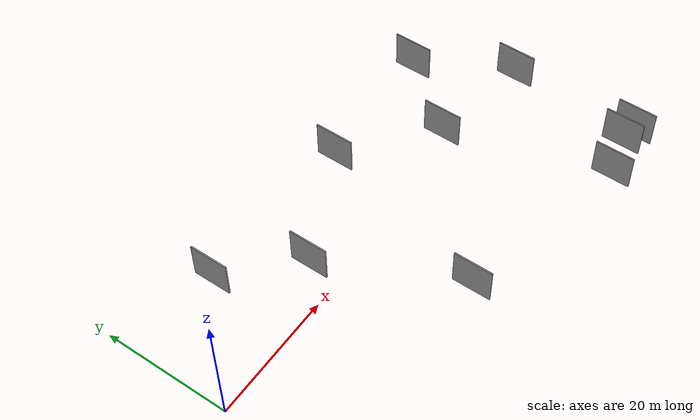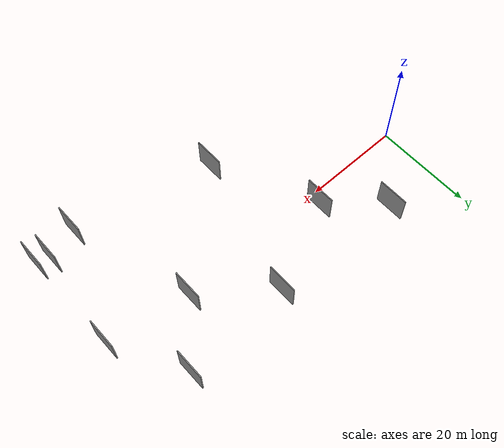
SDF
<sdf version="1.6">
 <world name="default">
  <scene>
   <sky><clouds><speed>12</speed></clouds></sky>
   <ambient>0.4 0.4 0.4 1</ambient>
   <background>0.7 0.7 0.7 1</background>
   <shadows>1</shadows>
  </scene>
  <gravity>0 0 -9.8066</gravity>
  <magnetic_field>6e-06 2.3e-05 -4.2e-05</magnetic_field>
  <physics default="0" name="default_physics" type="ode">
   <ode>
    <solver>
     <type>quick</type>
     <iters>10</iters>
     <sor>1.0</sor>
     <use_dynamic_moi_rescaling>0</use_dynamic_moi_rescaling>
    </solver>
    <constraints>
     <cfm>0</cfm>
     <erp>0.2</erp>
     <contact_max_correcting_vel>100</contact_max_correcting_vel>
     <contact_surface_layer>0.001</contact_surface_layer>
    </constraints>
   </ode>
   <max_step_size>0.004</max_step_size>
   <real_time_factor>1</real_time_factor>
   <real_time_update_rate>250</real_time_update_rate>
  </physics>
  <light name="sun" type="directional">
   <pose>0 0 10 0 0 0</pose>
   <diffuse>0.8 0.8 0.8 1</diffuse>
   <specular>0.2 0.2 0.2 1</specular>
   <attenuation>
    <range>1000</range>
    <constant>0.9</constant>
    <linear>0.01</linear>
    <quadratic>0.001</quadratic>
   </attenuation>
   <direction>-0.5 0.1 -0.9</direction>
  </light>
  <model name="grey_wall_1">
   <static>1</static>
   <pose>60.4643 -22.3523 2.5 0.000000 0.000000 1.570796</pose>
   <link name="link">
    <pose>0 0 3.00 0 0 0</pose>
    <collision name="collision"><geometry><box><size>6.00 0.2 6.00</size></box></geometry></collision>
    <visual name="visual">
     <cast_shadows>0</cast_shadows>
     <geometry><box><size>6.00 0.2 6.00</size></box></geometry>
     <material>
      <script>
       <uri>model://grey_wall/materials/scripts</uri>
       <uri>model://grey_wall/materials/textures</uri>
       <name>vrc/grey_wall</name>
      </script>
     </material>
    </visual>
   </link>
  </model>
  <model name="grey_wall_2">
   <static>1</static>
   <pose>61.6794 12.8524 2.5 0.000000 0.000000 1.570796</pose>
   <link name="link">
    <pose>0 0 3.00 0 0 0</pose>
    <collision name="collision"><geometry><box><size>6.00 0.2 6.00</size></box></geometry></collision>
    <visual name="visual">
     <cast_shadows>0</cast_shadows>
     <geometry><box><size>6.00 0.2 6.00</size></box></geometry>
     <material>
      <script>
       <uri>model://grey_wall/materials/scripts</uri>
       <uri>model://grey_wall/materials/textures</uri>
       <name>vrc/grey_wall</name>
      </script>
     </material>
    </visual>
   </link>
  </model>
  <model name="grey_wall_3">
   <static>1</static>
   <pose>32.6784 -16.4070 2.5 0.000000 0.000000 1.570796</pose>
   <link name="link">
    <pose>0 0 3.00 0 0 0</pose>
    <collision name="collision"><geometry><box><size>6.00 0.2 6.00</size></box></geometry></collision>
    <visual name="visual">
     <cast_shadows>0</cast_shadows>
     <geometry><box><size>6.00 0.2 6.00</size></box></geometry>
     <material>
      <script>
       <uri>model://grey_wall/materials/scripts</uri>
       <uri>model://grey_wall/materials/textures</uri>
       <name>vrc/grey_wall</name>
      </script>
     </material>
    </visual>
   </link>
  </model>
  <model name="grey_wall_4">
   <static>1</static>
   <pose>13.4107 12.8365 2.5 0.000000 0.000000 1.570796</pose>
   <link name="link">
    <pose>0 0 3.00 0 0 0</pose>
    <collision name="collision"><geometry><box><size>6.00 0.2 6.00</size></box></geometry></collision>
    <visual name="visual">
     <cast_shadows>0</cast_shadows>
     <geometry><box><size>6.00 0.2 6.00</size></box></geometry>
     <material>
      <script>
       <uri>model://grey_wall/materials/scripts</uri>
       <uri>model://grey_wall/materials/textures</uri>
       <name>vrc/grey_wall</name>
      </script>
     </material>
    </visual>
   </link>
  </model>
  <model name="grey_wall_5">
   <static>1</static>
   <pose>22.9951 3.6384 2.5 0.000000 0.000000 1.570796</pose>
   <link name="link">
    <pose>0 0 3.00 0 0 0</pose>
    <collision name="collision"><geometry><box><size>6.00 0.2 6.00</size></box></geometry></collision>
    <visual name="visual">
     <cast_shadows>0</cast_shadows>
     <geometry><box><size>6.00 0.2 6.00</size></box></geometry>
     <material>
      <script>
       <uri>model://grey_wall/materials/scripts</uri>
       <uri>model://grey_wall/materials/textures</uri>
       <name>vrc/grey_wall</name>
      </script>
     </material>
    </visual>
   </link>
  </model>
  <model name="grey_wall_6">
   <static>1</static>
   <pose>40.2126 11.9101 2.5 0.000000 0.000000 1.570796</pose>
   <link name="link">
    <pose>0 0 3.00 0 0 0</pose>
    <collision name="collision"><geometry><box><size>6.00 0.2 6.00</size></box></geometry></collision>
    <visual name="visual">
     <cast_shadows>0</cast_shadows>
     <geometry><box><size>6.00 0.2 6.00</size></box></geometry>
     <material>
      <script>
       <uri>model://grey_wall/materials/scripts</uri>
       <uri>model://grey_wall/materials/textures</uri>
       <name>vrc/grey_wall</name>
      </script>
     </material>
    </visual>
   </link>
  </model>
  <model name="grey_wall_7">
   <static>1</static>
   <pose>69.1205 -0.8616 2.5 0.000000 0.000000 1.570796</pose>
   <link name="link">
    <pose>0 0 3.00 0 0 0</pose>
    <collision name="collision"><geometry><box><size>6.00 0.2 6.00</size></box></geometry></collision>
    <visual name="visual">
     <cast_shadows>0</cast_shadows>
     <geometry><box><size>6.00 0.2 6.00</size></box></geometry>
     <material>
      <script>
       <uri>model://grey_wall/materials/scripts</uri>
       <uri>model://grey_wall/materials/textures</uri>
       <name>vrc/grey_wall</name>
      </script>
     </material>
    </visual>
   </link>
  </model>
  <model name="grey_wall_8">
   <static>1</static>
   <pose>53.0039 1.8526 2.5 0.000000 0.000000 1.570796</pose>
   <link name="link">
    <pose>0 0 3.00 0 0 0</pose>
    <collision name="collision"><geometry><box><size>6.00 0.2 6.00</size></box></geometry></collision>
    <visual name="visual">
     <cast_shadows>0</cast_shadows>
     <geometry><box><size>6.00 0.2 6.00</size></box></geometry>
     <material>
      <script>
       <uri>model://grey_wall/materials/scripts</uri>
       <uri>model://grey_wall/materials/textures</uri>
       <name>vrc/grey_wall</name>
      </script>
     </material>
    </visual>
   </link>
  </model>
  <model name="grey_wall_9">
   <static>1</static>
   <pose>69.4049 -21.1273 2.5 0.000000 0.000000 1.570796</pose>
   <link name="link">
    <pose>0 0 3.00 0 0 0</pose>
    <collision name="collision"><geometry><box><size>6.00 0.2 6.00</size></box></geometry></collision>
    <visual name="visual">
     <cast_shadows>0</cast_shadows>
     <geometry><box><size>6.00 0.2 6.00</size></box></geometry>
     <material>
      <script>
       <uri>model://grey_wall/materials/scripts</uri>
       <uri>model://grey_wall/materials/textures</uri>
       <name>vrc/grey_wall</name>
      </script>
     </material>
    </visual>
   </link>
  </model>
  <model name="grey_wall_10">
   <static>1</static>
   <pose>66.7576 -20.5880 2.5 0.000000 0.000000 1.570796</pose>
   <link name="link">
    <pose>0 0 3.00 0 0 0</pose>
    <collision name="collision"><geometry><box><size>6.00 0.2 6.00</size></box></geometry></collision>
    <visual name="visual">
     <cast_shadows>0</cast_shadows>
     <geometry><box><size>6.00 0.2 6.00</size></box></geometry>
     <material>
      <script>
       <uri>model://grey_wall/materials/scripts</uri>
       <uri>model://grey_wall/materials/textures</uri>
       <name>vrc/grey_wall</name>
      </script>
     </material>
    </visual>
   </link>
  </model>
 </world>
</sdf>
